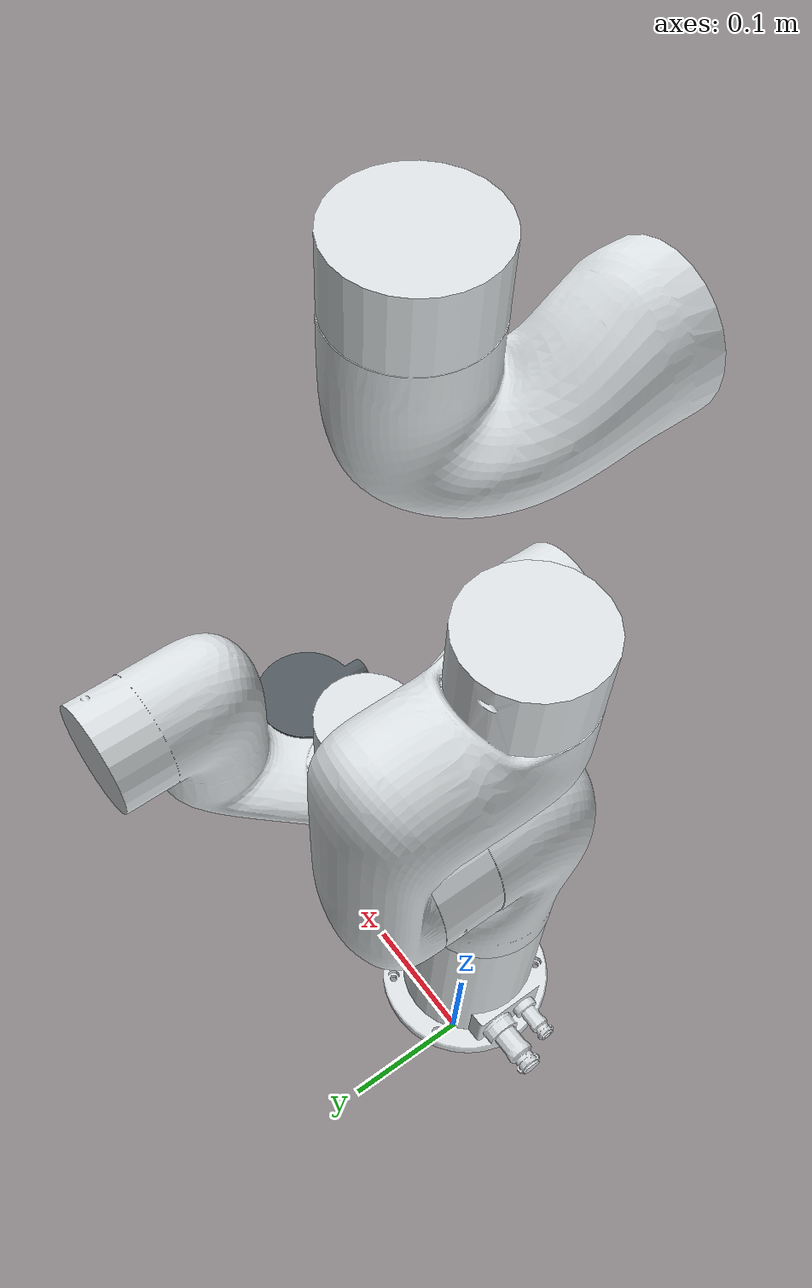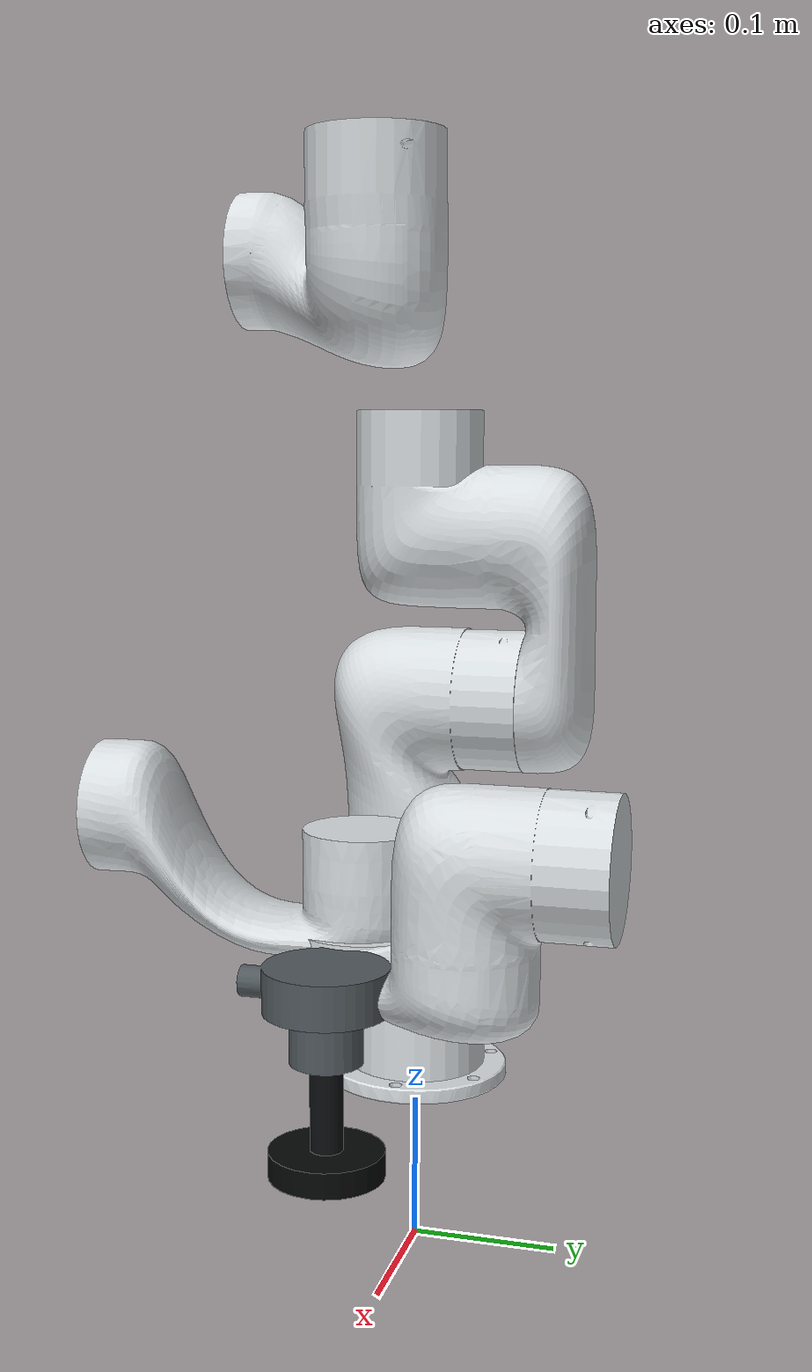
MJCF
<mujoco model="xarm6 vacuum">
  <compiler angle="radian" autolimits="true" meshdir="assets"/>

  <option integrator="implicitfast" gravity="0 0 -9.81"/>

  <asset>
    <material name="white" rgba="0.86 0.88 0.89 1" specular="0.32" shininess="0.42" reflectance="0.04"/>
    <material name="gray" rgba="0.32 0.35 0.37 1" specular="0.55" shininess="0.62" reflectance="0.10"/>
    <material name="black" rgba="0.045 0.052 0.058 1" specular="0.16" shininess="0.24" reflectance="0.02"/>
    <material name="vacuum_rubber" rgba="0.02 0.025 0.025 1" specular="0.06" shininess="0.12"/>

    <mesh file="link_base.stl"/>
    <mesh file="link1.stl"/>
    <mesh file="link2.stl"/>
    <mesh file="link3.stl"/>
    <mesh file="link4.stl"/>
    <mesh file="link5.stl"/>
    <mesh file="link6.stl"/>
    <mesh file="end_tool.stl"/>
  </asset>

  <default>
    <default class="xarm6">
      <geom type="mesh" material="white"/>
      <joint axis="0 0 1" armature="0.1" range="-6.28319 6.28319" frictionloss="1"/>
      <default class="size1">
        <joint damping="10"/>
      </default>
      <default class="size2">
        <joint damping="5"/>
      </default>
      <default class="size3">
        <joint damping="2"/>
      </default>
      <default class="visual">
        <geom type="mesh" contype="0" conaffinity="0" group="2"/>
      </default>
      <site size="0.001" rgba="1 0 0 1" group="4"/>
    </default>
  </default>

  <worldbody>
    <body name="line_base" pos="0 0 .12" childclass="xarm6">
      <inertial pos="-0.021131 -0.0016302 0.056488" quat="0.696843 0.20176 0.10388 0.680376" mass="0.88556"
        diaginertia="0.00382023 0.00335282 0.00167725"/>
      <geom mesh="link_base"/>

      <body name="link1" pos="0 0 0.267">
        <inertial pos="-0.0002 0.02905 -0.01233" quat="0.978953 -0.202769 -0.00441617 -0.0227264" mass="2.382"
          diaginertia="0.00569127 0.00533384 0.00293865"/>
        <joint name="joint1" class="size1"/>
        <geom mesh="link1"/>

        <body name="link2" quat="1 -1 0 0">
          <inertial pos="0.03881 -0.22783 0.03496" quat="0.635305 0.753023 0.170976 -0.010531" mass="2.2675"
            diaginertia="0.0294477 0.0281783 0.00383449"/>
          <joint name="joint2" range="-2.059 2.0944" class="size1"/>
          <geom mesh="link2"/>

          <body name="link3" pos="0.0535 -0.2845 0">
            <inertial pos="0.07041 0.11631 0.0107" quat="0.845838 0.425539 -0.293179 0.132369" mass="1.875"
              diaginertia="0.00714132 0.00699471 0.00196753"/>
            <joint name="joint3" range="-3.927 0.19198" class="size2"/>
            <geom mesh="link3"/>

            <body name="link4" pos="0.0775 0.3425 0" quat="1 -1 0 0">
              <inertial pos="-0.00018 0.01798 -0.02291" quat="0.99929 -0.0369702 0.00179434 -0.00701174" mass="1.3192"
                diaginertia="0.00489614 0.00447403 0.00132609"/>
              <joint name="joint4" class="size2"/>
              <geom mesh="link4"/>

              <body name="link5" pos="0 0 0" quat="1 1 0 0">
                <inertial pos="0.0651 0.03096 0.00315" quat="-0.223008 0.771309 0.16027 0.574163" mass="1.33854"
                  diaginertia="0.00241824 0.00213367 0.00108731"/>
                <joint name="joint5" range="-1.69297 3.14159" class="size3"/>
                <geom mesh="link5"/>

                <body name="link6" pos="0.076 0.097 0" quat="1 -1 0 0">
                  <inertial pos="0.00763576 -0.00272358 0.0307029" quat="0.634077 -0.153028 -0.073538 0.754401" mass="0.838615"
                    diaginertia="0.00129456 0.00116006 0.00078716"/>
                  <joint name="joint6" class="size3"/>
                  <geom material="gray" mesh="end_tool" quat="0 0 0 1"/>

                  <body name="vacuum_end_effector" pos="0 0 0.015">
                    <inertial pos="0 0 0.045" mass="0.25" diaginertia="0.00018 0.00018 0.00008"/>
                    <geom name="vacuum_mount_geom" type="cylinder" pos="0 0 -0.008" size="0.022 0.024" material="gray"
                          mass="0.12" friction="0.8 0.8 0.8"/>
                    <geom name="vacuum_stem_geom" type="cylinder" pos="0 0 0.038" size="0.010 0.034" material="black"
                          mass="0.05" friction="0.8 0.8 0.8"/>
                    <geom name="vacuum_cup_geom" type="cylinder" pos="0 0 0.078" size="0.035 0.008" material="vacuum_rubber"
                          mass="0.08" friction="1.2 1.2 1.2"/>
                    <site name="vacuum_suction_site" pos="0 0 0.087" type="sphere" size="0.008" rgba="0 0.8 1 0.85"/>
                    <site name="link_tcp" pos="0 0 0.087" type="sphere" size="0.01" rgba="1 0 0 0" group="1"/>
                  </body>
                </body>
              </body>
            </body>
          </body>
        </body>
      </body>
    </body>
  </worldbody>

  <actuator>
    <velocity name="vel1" joint="joint1" kv="1000" ctrlrange="-3.14159 3.14159" forcerange="-50 50"/>
    <velocity name="vel2" joint="joint2" kv="1000" ctrlrange="-3.14159 3.14159" forcerange="-50 50"/>
    <velocity name="vel3" joint="joint3" kv="1000" ctrlrange="-3.14159 3.14159" forcerange="-30 30"/>
    <velocity name="vel4" joint="joint4" kv="1000" ctrlrange="-3.14159 3.14159" forcerange="-30 30"/>
    <velocity name="vel5" joint="joint5" kv="1000" ctrlrange="-3.14159 3.14159" forcerange="-20 20"/>
    <velocity name="vel6" joint="joint6" kv="1000" ctrlrange="-3.14159 3.14159" forcerange="-20 20"/>
  </actuator>
</mujoco>
